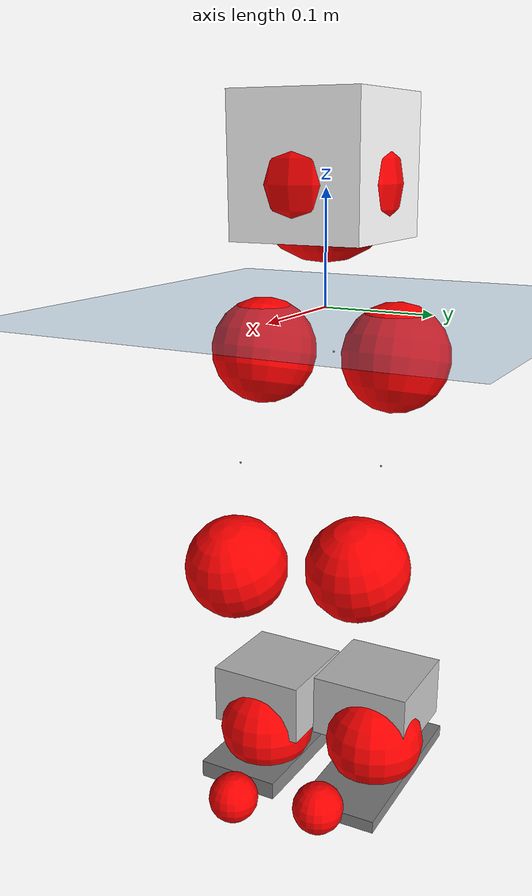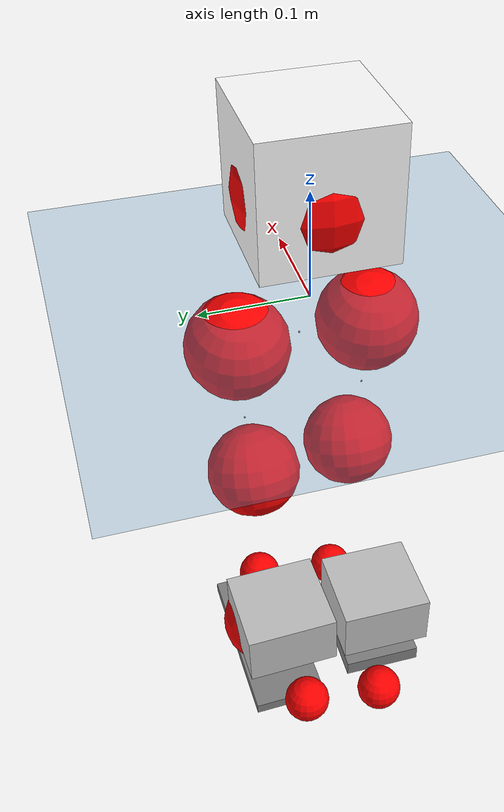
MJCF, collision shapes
<mujoco model="pi_12dof_release_v1">
  <compiler angle="radian" assetdir="assets" balanceinertia="true" inertiafromgeom="false"/>

  <option timestep="0.005" density="1.2" viscosity="2e-05"/>

  <size nkey="1"/>

  <visual>
    <quality shadowsize="8192"/>
    <map shadowclip="0.5"/>
  </visual>

  <default>
    <default class="/">
      <joint armature="0.01" damping="0.01" frictionloss="0.01"/>
      <geom contype="0" conaffinity="0" group="1" solref="-1000 -80"/>
      <site size="0.01 0.005 0.005" group="5"/>
      <general forcelimited="true" biastype="affine" gainprm="20" biasprm="0 -20 -0.5"/>
      <default class="foot">
        <geom size="0.0845 0.036 0.005" type="box" condim="6" group="4" priority="1" friction="0.9 0.2 0.2" solimp="0.015 1 0.005"/>
      </default>
      <default class="reward_collision_sphere">
        <geom group="5" rgba="1 0 0 1"/>
      </default>
    </default>
  </default>

  <asset>
    <texture type="skybox" colorspace="auto" name="//unnamed_texture_0" builtin="gradient" rgb1="0.95 0.95 0.95" rgb2="0.95 0.95 0.95" width="100" height="600"/>
    <texture type="2d" colorspace="auto" name="texplane" builtin="checker" rgb1="0.345 0.575 0.748" rgb2="0.345 0.575 0.748" markrgb="1 1 1" width="512" height="512"/>
    <material name="MatPlane" class="/" texture="texplane" texuniform="true" texrepeat="2 2" specular="0.9"/>
    <mesh name="baselink_1" class="/" file="baselink_1.STL"/>
    <mesh name="r_hip_pitch_link" class="/" file="r_hip_pitch_link.STL"/>
    <mesh name="r_hip_roll_link" class="/" file="r_hip_roll_link.STL"/>
    <mesh name="r_thigh_link" class="/" file="r_thigh_link.STL"/>
    <mesh name="r_calf_link" class="/" file="r_calf_link.STL"/>
    <mesh name="r_ankle_pitch_link" class="/" file="r_ankle_pitch_link.STL"/>
    <mesh name="r_ankle_roll_link" class="/" file="r_ankle_roll_link.STL"/>
    <mesh name="l_hip_pitch_link" class="/" file="l_hip_pitch_link.STL"/>
    <mesh name="l_hip_roll_link" class="/" file="l_hip_roll_link.STL"/>
    <mesh name="l_thigh_link" class="/" file="l_thigh_link.STL"/>
    <mesh name="l_calf_link" class="/" file="l_calf_link.STL"/>
    <mesh name="l_ankle_pitch_link" class="/" file="l_ankle_pitch_link.STL"/>
    <mesh name="l_ankle_roll_link" class="/" file="l_ankle_roll_link.STL"/>
  </asset>

  <worldbody>
    <geom name="floor" class="/" size="100 100 0.125" type="plane" group="0" material="MatPlane"/>
    <light name="toplight_shadow" class="/" pos="0 0 5" dir="0.0990148 0.0990148 -0.990148" type="directional" ambient="0.04 0.04 0.04" diffuse="0.55 0.55 0.55" specular="0.12 0.12 0.12"/>
    <light name="toplight_fill" class="/" pos="0 0 5" dir="0.0990148 0.0990148 -0.990148" type="directional" castshadow="false" ambient="0.04 0.04 0.04" diffuse="0.3 0.3 0.3" specular="0.08 0.08 0.08"/>
    <body name="trunk" pos="0.000622031 -0.000343986 0.00901189" quat="1 -4.44317e-05 -2.68883e-05 -0.00026882">
      <inertial pos="0.00320132 -0.0128765 0.0444845" quat="0.695986 0.00827677 0.00943762 0.717946" mass="3.79508" diaginertia="0.0478611 0.00358446 0.0201931"/>
      <joint name="//unnamed_joint_0" type="free"/>
      <geom name="//unnamed_geom_1" class="/" type="mesh" density="0" rgba="1 1 1 1" mesh="baselink_1"/>
      <geom name="//unnamed_geom_2" class="/" size="0.0594783 0.0594783 0.0594783" pos="0 0 0.108198" type="box" rgba="1 1 1 1"/>
      <geom name="//unnamed_geom_3" class="reward_collision_sphere" size="0.0654261" pos="0 0 0.0946734"/>
      <site name="imu" class="/" pos="-0.0223757 0.0349817 -0.0242318" size="0.0118957"/>
      <camera name="track" class="/" pos="0 -1.64054 0" quat="0.707107 0.707107 0 0" mode="trackcom"/>
      <camera name="ego_camera" class="/" pos="0.104696 0 0.243446" quat="-0.5 -0.5 0.5 0.5"/>
      <body name="r_hip_pitch_link" pos="0.00337582 -0.0111564 -0.0456992" quat="0.992007 0.000625207 -0.126184 -3.36002e-05">
        <inertial pos="0.0124598 -0.0460425 0.00633132" quat="-0.0241592 0.708669 -0.0322952 0.704387" mass="0.679055" diaginertia="0.000601884 4.13459e-05 0.000357812"/>
        <joint name="r_hip_pitch_joint" class="/" pos="0 0 0" axis="-0.0636516 -0.997971 -0.00149583" range="-1.70796 1.421" armature="0.0162308" damping="0.0419461" frictionloss="0.0175905"/>
        <geom name="//unnamed_geom_4" class="/" type="mesh" density="0" rgba="0.75294 0.75294 0.75294 1" mesh="r_hip_pitch_link"/>
        <geom name="//unnamed_geom_5" class="/" size="0.000594783 0.000594783 0.000594783" type="box" rgba="0.75294 0.75294 0.75294 1"/>
        <body name="r_hip_roll_link" pos="0.0048128 -0.0451386 -0.00586801" quat="1 6.8948e-05 0.000166473 0.00026397">
          <inertial pos="-0.00175487 -0.00145538 -0.0753858" quat="0.70668 -0.0786005 -0.0835339 0.698175" mass="0.719785" diaginertia="0.00171138 0.000103566 0.00077864"/>
          <joint name="r_hip_roll_joint" class="/" pos="0 0 0" axis="-0.998846 0.0115919 0.0466059" stiffness="0.0271389" range="-0.129596 0.505671" armature="0.0128655" damping="0.0775287" frictionloss="0.00759882"/>
          <geom name="//unnamed_geom_6" class="/" type="mesh" density="0" rgba="0.75294 0.75294 0.75294 1" mesh="r_hip_roll_link"/>
          <geom name="//unnamed_geom_7" class="/" size="0.000594783 0.000594783 0.000594783" type="box" rgba="0.75294 0.75294 0.75294 1"/>
          <geom name="//unnamed_geom_8" class="reward_collision_sphere" size="0.0475826"/>
          <body name="r_thigh_link" pos="0.00572892 -0.00878729 -0.103519" quat="0.999981 0.00193633 -0.00261645 -0.00521866">
            <inertial pos="0.00029522 0.000937812 -0.0662647" quat="0.736987 0.675899 0.000321586 -0.0031815" mass="0.224667" diaginertia="0.000650614 3.63486e-05 0.000292358"/>
            <joint name="r_thigh_joint" class="/" pos="0 0 0" axis="-0.00414524 -0.0112828 -0.999928" range="-0.282429 0.771124" armature="0.00549502" damping="0" frictionloss="0.0124753"/>
            <geom name="//unnamed_geom_9" class="/" type="mesh" density="0" rgba="0.75294 0.75294 0.75294 1" mesh="r_thigh_link"/>
            <geom name="//unnamed_geom_10" class="/" size="0.000594783 0.000594783 0.000594783" type="box" rgba="0.75294 0.75294 0.75294 1"/>
            <body name="r_calf_link" pos="-0.00445506 0.00527316 -0.0955947" quat="0.947274 -0.00492708 0.320385 -0.00136583">
              <inertial pos="-0.00208706 -0.00245507 -0.0924387" quat="0.999988 -0.00445721 -0.0016584 -0.00106631" mass="1.4945" diaginertia="0.0214706 0.00160904 0.000771403"/>
              <joint name="r_calf_joint" class="/" pos="0 0 0" axis="-0.0512783 -0.997487 0.0488976" range="-1.5381 0.669762" armature="0.0130534" damping="0.0093294" frictionloss="0.0140644"/>
              <geom name="//unnamed_geom_11" class="/" type="mesh" density="0" rgba="0.75294 0.75294 0.75294 1" mesh="r_calf_link"/>
              <geom name="//unnamed_geom_12" class="/" size="0.000594783 0.000594783 0.000594783" type="box" rgba="0.75294 0.75294 0.75294 1"/>
              <geom name="//unnamed_geom_13" class="reward_collision_sphere" size="0.0475826"/>
              <body name="r_ankle_pitch_link" pos="-0.0136764 -0.00712195 -0.187718" quat="0.980162 0.00126547 -0.19819 -0.00128587">
                <inertial pos="0.00710058 0.00423657 -0.000544438" quat="0.00673981 0.704158 -0.00385704 0.710001" mass="0.26389" diaginertia="0.00155284 7.27285e-05 0.000434625"/>
                <joint name="r_ankle_pitch_joint" class="/" pos="0 0 0" axis="-0.0302086 -0.999528 -0.00561005" stiffness="0.0277188" range="-1.13517 0.388634" armature="0.0112225" damping="0" frictionloss="0.00539007"/>
                <geom name="//unnamed_geom_14" class="/" type="mesh" density="0" rgba="0.75294 0.75294 0.75294 1" mesh="r_ankle_pitch_link"/>
                <geom name="//unnamed_geom_15" class="/" size="0.046393 0.0475826 0.0297391" type="box" rgba="0.75294 0.75294 0.75294 1"/>
                <body name="r_ankle_roll_link" pos="0.092445 -0.000223757 -0.00685855" quat="0.999999 2.85686e-05 0.000658704 -0.000896782">
                  <inertial pos="-0.0282562 0.00300513 -0.0330179" quat="0.546825 0.443208 0.438396 0.558891" mass="1.04826" diaginertia="0.00552451 0.000385817 0.0012908"/>
                  <joint name="r_ankle_roll_joint" class="/" pos="0 0 0" axis="-0.999984 0.0028828 -0.00494991" range="-0.174141 0.191036" armature="0.0117824" damping="0.00159466" frictionloss="0.00364569"/>
                  <geom name="//unnamed_geom_16" class="/" type="mesh" density="0" rgba="0.75294 0.75294 0.75294 1" mesh="r_ankle_roll_link"/>
                  <geom name="//unnamed_geom_17" class="/" type="mesh" rgba="0.75294 0.75294 0.75294 1" mesh="r_ankle_roll_link"/>
                  <geom name="right_foot" class="foot" size="0.0606157 0.041309 0.00852358" pos="-0.0711934 0 -0.059509"/>
                  <geom name="//unnamed_geom_19" class="reward_collision_sphere" size="0.0475826" pos="-0.0697975 0 -0.0270495"/>
                  <geom name="//unnamed_geom_20" class="reward_collision_sphere" size="0.0237913" pos="0.0209392 0.0164054 -0.0540991"/>
                  <geom name="//unnamed_geom_21" class="reward_collision_sphere" size="0.0237913" pos="-0.167514 0.0164054 -0.0540991"/>
                  <site name="right_foot" class="foot" pos="-0.0711934 0 -0.059509" size="0.0118957"/>
                </body>
              </body>
            </body>
          </body>
        </body>
      </body>
      <body name="l_hip_pitch_link" pos="0.0026937 0.00981456 -0.0468926" quat="0.992179 -0.000303742 -0.124822 0.000404187">
        <inertial pos="0.00753762 0.0555405 -0.00223483" quat="0.0286923 0.694599 0.0565483 0.716597" mass="0.770982" diaginertia="0.000639915 3.48257e-05 0.000486095"/>
        <joint name="l_hip_pitch_joint" class="/" pos="0 0 0" axis="0.0092745 0.999953 0.00272589" range="-1.44824 1.99401" armature="0.0069732" damping="0" frictionloss="0.0182718"/>
        <geom name="//unnamed_geom_22" class="/" type="mesh" density="0" rgba="0.75294 0.75294 0.75294 1" mesh="l_hip_pitch_link"/>
        <geom name="//unnamed_geom_23" class="/" size="0.000594783 0.000594783 0.000594783" type="box" rgba="0.75294 0.75294 0.75294 1"/>
        <body name="l_hip_roll_link" pos="-0.00386908 0.0576742 0.000150782" quat="0.999994 -0.00211855 0.00241335 0.00104157">
          <inertial pos="0.00150604 0.00905909 -0.0849959" quat="0.684954 -0.0785594 -0.0639889 0.721507" mass="0.623897" diaginertia="0.00153023 9.47625e-05 0.000452604"/>
          <joint name="l_hip_roll_joint" class="/" pos="0 0 0" axis="-0.999569 -0.0109099 0.0272372" stiffness="0.0187143" range="-0.783182 0.365129" armature="0.0095434" damping="0" frictionloss="0.0114598"/>
          <geom name="//unnamed_geom_24" class="/" type="mesh" density="0" rgba="0.75294 0.75294 0.75294 1" mesh="l_hip_roll_link"/>
          <geom name="//unnamed_geom_25" class="/" size="0.000594783 0.000594783 0.000594783" type="box" rgba="0.75294 0.75294 0.75294 1"/>
          <geom name="//unnamed_geom_26" class="reward_collision_sphere" size="0.0475826"/>
          <body name="l_thigh_link" pos="-0.00988293 -0.00523411 -0.0946348" quat="0.999986 -0.00166411 -0.00416534 0.00278309">
            <inertial pos="-0.00988445 0.0033772 -0.055702" quat="0.674037 0.738697 -0.000293541 0.000394972" mass="0.176937" diaginertia="0.000567012 2.43315e-05 0.000174246"/>
            <joint name="l_thigh_joint" class="/" pos="0 0 0" axis="-0.0163419 -0.000228723 -0.999866" range="-0.671172 0.514102" armature="0.0155365" damping="0" frictionloss="0.0172785"/>
            <geom name="//unnamed_geom_27" class="/" type="mesh" density="0" rgba="0.75294 0.75294 0.75294 1" mesh="l_thigh_link"/>
            <geom name="//unnamed_geom_28" class="/" size="0.000594783 0.000594783 0.000594783" type="box" rgba="0.75294 0.75294 0.75294 1"/>
            <body name="l_calf_link" pos="-0.00161374 -0.0100047 -0.0946592" quat="0.948395 -0.00145662 0.317049 0.00489799">
              <inertial pos="-0.00229761 -0.00317499 -0.0885374" quat="0.997686 -0.0278104 0.0605553 -0.0135329" mass="1.57642" diaginertia="0.0185688 0.00154781 0.000861953"/>
              <joint name="l_calf_joint" class="/" pos="0 0 0" axis="-0.00248371 0.99998 0.00575665" range="-0.707169 1.77632" armature="0.0113738" damping="0" frictionloss="0.0167036"/>
              <geom name="//unnamed_geom_29" class="/" type="mesh" density="0" rgba="0.75294 0.75294 0.75294 1" mesh="l_calf_link"/>
              <geom name="//unnamed_geom_30" class="/" size="0.000594783 0.000594783 0.000594783" type="box" rgba="0.75294 0.75294 0.75294 1"/>
              <geom name="//unnamed_geom_31" class="reward_collision_sphere" size="0.0475826"/>
              <body name="l_ankle_pitch_link" pos="0.00157413 -0.00443662 -0.176367" quat="0.979993 -0.000319149 -0.19903 0.000133226">
                <inertial pos="0.00703264 -0.0150672 -0.00722053" quat="0.0105034 0.673224 0.0156166 0.739199" mass="0.343889" diaginertia="0.00192341 9.62152e-05 0.000644858"/>
                <joint name="l_ankle_pitch_joint" class="/" pos="0 0 0" axis="0.0568001 0.998028 0.0267132" range="-0.554716 1.33308" armature="0.012391" damping="0.0545548" frictionloss="0.0135964"/>
                <geom name="//unnamed_geom_32" class="/" type="mesh" density="0" rgba="0.75294 0.75294 0.75294 1" mesh="l_ankle_pitch_link"/>
                <geom name="//unnamed_geom_33" class="/" size="0.046393 0.0475826 0.0297391" type="box" rgba="0.75294 0.75294 0.75294 1"/>
                <body name="l_ankle_roll_link" pos="0.0972722 0.0100594 -0.00343495" quat="0.999989 0.00388495 0.00233653 0.00108568">
                  <inertial pos="-0.0396366 -0.00110413 -0.0206931" quat="0.603976 0.415524 0.387867 0.55867" mass="1.08463" diaginertia="0.00630221 0.000434148 0.00113514"/>
                  <joint name="l_ankle_roll_joint" class="/" pos="0 0 0" axis="-0.997442 0.0698704 -0.0150884" stiffness="0.0233155" range="-0.18516 0.446716" armature="0.0129413" damping="0" frictionloss="0.020327"/>
                  <geom name="//unnamed_geom_34" class="/" type="mesh" density="0" rgba="0.75294 0.75294 0.75294 1" mesh="l_ankle_roll_link"/>
                  <geom name="//unnamed_geom_35" class="/" type="mesh" rgba="0.75294 0.75294 0.75294 1" mesh="l_ankle_roll_link"/>
                  <geom name="left_foot" class="foot" size="0.089243 0.0370496 0.00587558" pos="-0.0711934 0 -0.059509"/>
                  <geom name="//unnamed_geom_37" class="reward_collision_sphere" size="0.0475826" pos="-0.0697975 0 -0.0270495"/>
                  <geom name="//unnamed_geom_38" class="reward_collision_sphere" size="0.0237913" pos="0.0209392 -0.0164054 -0.0540991"/>
                  <geom name="//unnamed_geom_39" class="reward_collision_sphere" size="0.0237913" pos="-0.167514 -0.0164054 -0.0540991"/>
                  <site name="left_foot" class="foot" pos="-0.0711934 0 -0.059509" size="0.0118957"/>
                </body>
              </body>
            </body>
          </body>
        </body>
      </body>
    </body>
  </worldbody>

  <contact>
    <pair class="/" geom1="floor" geom2="right_foot" name="//unnamed_contact_1"/>
    <pair class="/" geom1="floor" geom2="left_foot" name="//unnamed_contact_0"/>
  </contact>

  <actuator>
    <general name="r_hip_pitch_joint" class="/" joint="r_hip_pitch_joint" forcerange="-33.5037 33.5037" gainprm="26.9703" biasprm="0 -26.9703 -0.565786"/>
    <general name="r_hip_roll_joint" class="/" joint="r_hip_roll_joint" forcerange="-25.9459 25.9459" gainprm="26.9703" biasprm="0 -26.9703 -0.565786"/>
    <general name="r_thigh_joint" class="/" joint="r_thigh_joint" forcerange="-32.3169 32.3169" gainprm="26.9703" biasprm="0 -26.9703 -0.565786"/>
    <general name="r_calf_joint" class="/" joint="r_calf_joint" forcerange="-20.8415 20.8415" gainprm="26.9703" biasprm="0 -26.9703 -0.565786"/>
    <general name="r_ankle_pitch_joint" class="/" joint="r_ankle_pitch_joint" forcerange="-17.3591 17.3591" gainprm="26.9703" biasprm="0 -26.9703 -0.565786"/>
    <general name="r_ankle_roll_joint" class="/" joint="r_ankle_roll_joint" forcerange="-13.7326 13.7326" gainprm="26.9703" biasprm="0 -26.9703 -0.565786"/>
    <general name="l_hip_pitch_joint" class="/" joint="l_hip_pitch_joint" forcerange="-31.6582 31.6582" gainprm="26.9703" biasprm="0 -26.9703 -0.565786"/>
    <general name="l_hip_roll_joint" class="/" joint="l_hip_roll_joint" forcerange="-38.162 38.162" gainprm="26.9703" biasprm="0 -26.9703 -0.565786"/>
    <general name="l_thigh_joint" class="/" joint="l_thigh_joint" forcerange="-21.965 21.965" gainprm="26.9703" biasprm="0 -26.9703 -0.565786"/>
    <general name="l_calf_joint" class="/" joint="l_calf_joint" forcerange="-28.6147 28.6147" gainprm="26.9703" biasprm="0 -26.9703 -0.565786"/>
    <general name="l_ankle_pitch_joint" class="/" joint="l_ankle_pitch_joint" forcerange="-20.72 20.72" gainprm="26.9703" biasprm="0 -26.9703 -0.565786"/>
    <general name="l_ankle_roll_joint" class="/" joint="l_ankle_roll_joint" forcerange="-30.5703 30.5703" gainprm="26.9703" biasprm="0 -26.9703 -0.565786"/>
  </actuator>

  <sensor>
    <gyro site="imu" name="imu_angular_velocity"/>
    <velocimeter site="imu" name="imu_linear_velocity"/>
    <framelinvel objtype="site" objname="left_foot" name="left_foot_global_linear_velocity"/>
    <framelinvel objtype="site" objname="right_foot" name="right_foot_global_linear_velocity"/>
  </sensor>

  <keyframe>
    <key name="home" qpos="0 0 0.291 1 0 0 0 0.4 0 0 -0.8 0.4 0 -0.4 0 0 0.8 -0.4 0"/>
  </keyframe>
</mujoco>
